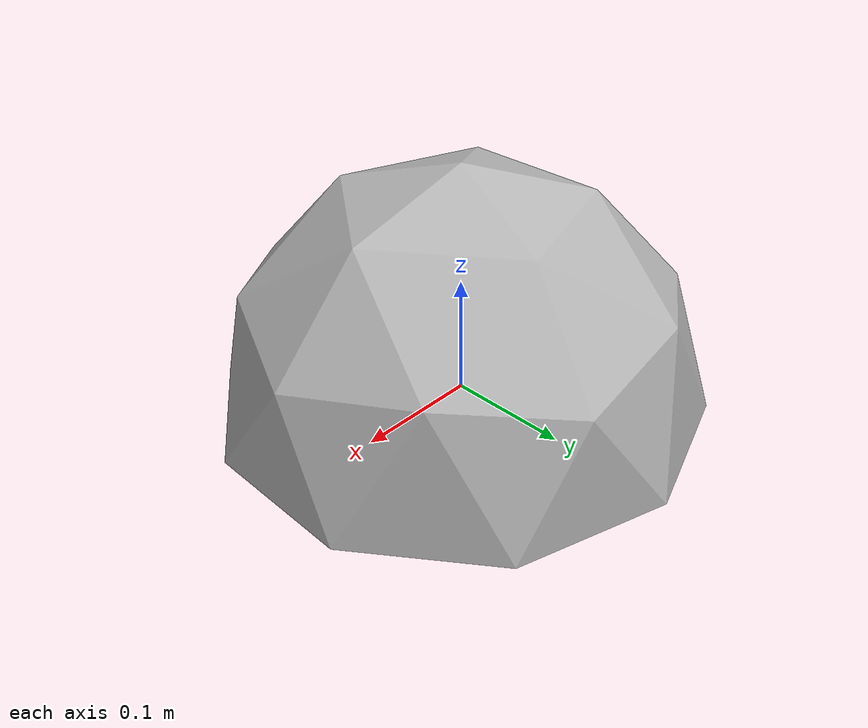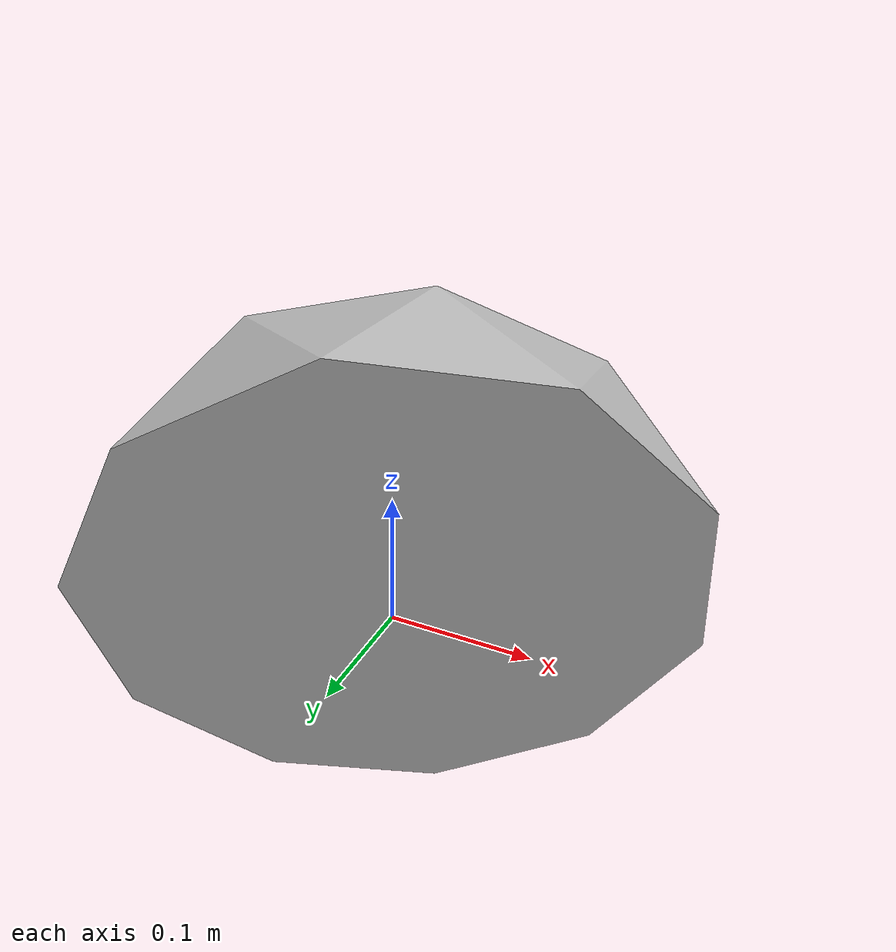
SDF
<?xml version="1.0" ?>
<sdf version="1.5">
  <model name="ico_esfera">
    <link name="link">
      <collision name="collision">
        <geometry>
          <mesh>
            <scale>0.2 0.2 0.2</scale>
            <uri>model://ico_esfera/meshes/ico_esfera.stl</uri>
          </mesh>
        </geometry>
      </collision>
      <visual name="visual">
        <geometry>
          <mesh>
            <scale>0.2 0.2 0.2</scale>
            <uri>model://ico_esfera/meshes/ico_esfera.dae</uri>
          </mesh>
        </geometry>
      </visual>
    </link>
  </model>
</sdf>
